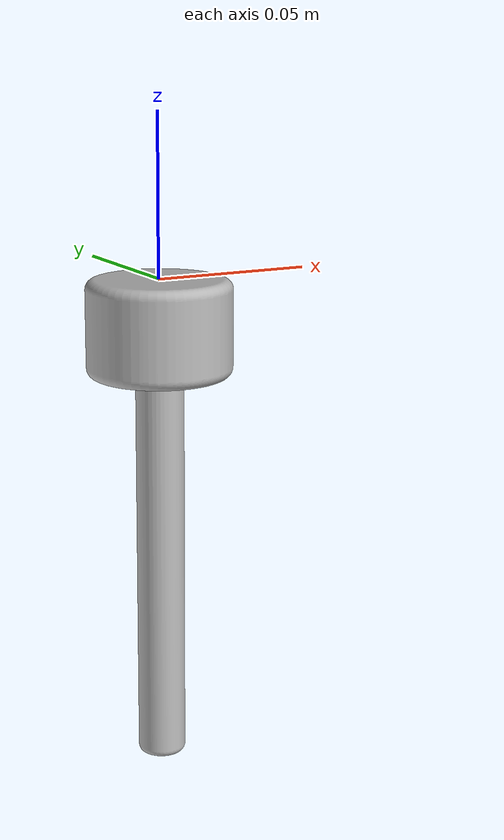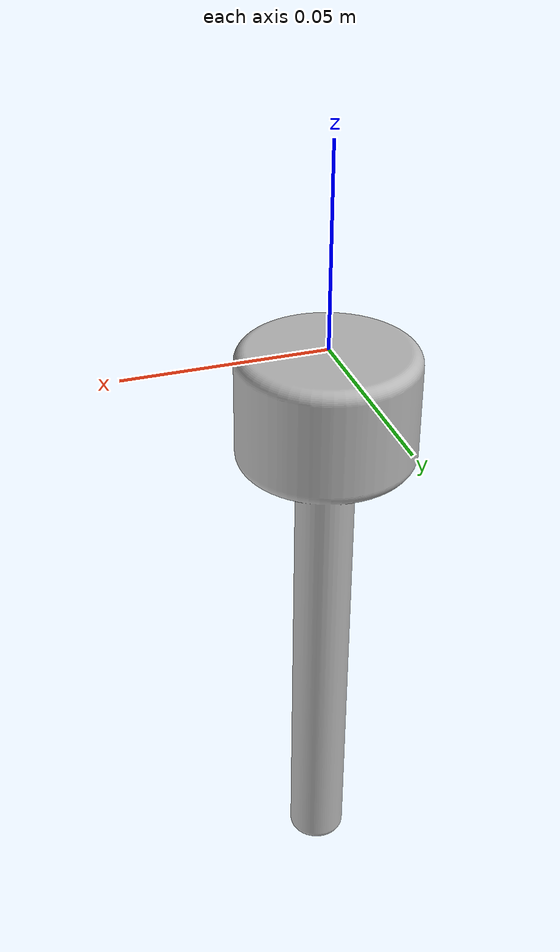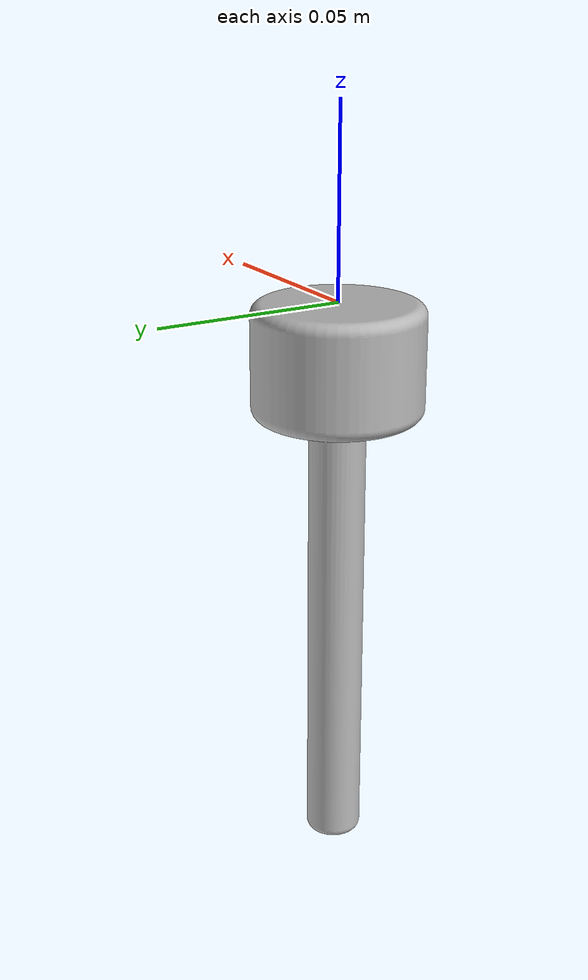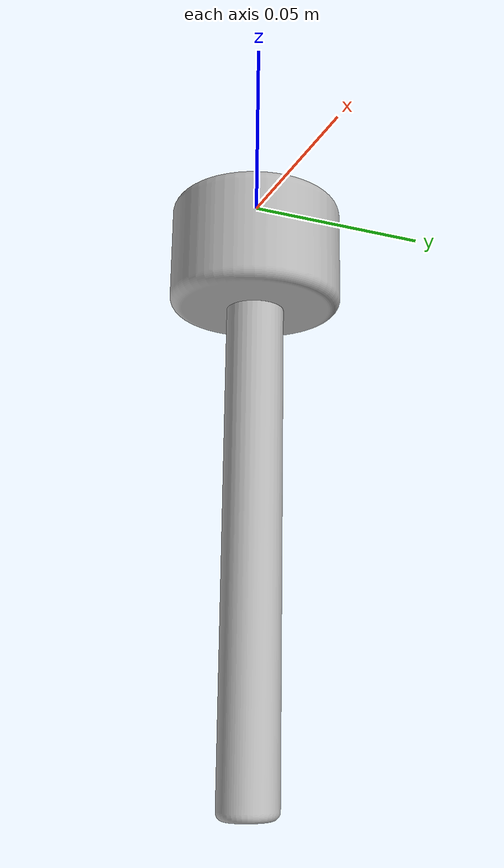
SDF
<?xml version="1.0" ?>
<sdf version="1.5">
  <model name="pH_probe">
    <static>false</static>
    <link name="link">

      <inertial>
        <mass>0.1</mass>
        <inertia>
          <ixx>1.1248e-04</ixx>
          <ixy>0.0</ixy>
          <ixz>0.0</ixz>
          <iyy>0.3149e-04</iyy>
          <iyz>0.0</iyz>
          <izz>0.3149e-04</izz>
        </inertia>
      </inertial>

      <visual name="visual">
        <geometry>
          <mesh>
            <uri>model://pH_probe/meshes/pH_probe.dae</uri>
          </mesh>
        </geometry>
      </visual>
      <!-- collision -->
      <collision name="collision">
        <geometry>
          <mesh>
            <uri>model://pH_probe/collision/pH_probe.stl</uri>
          </mesh>
        </geometry>
        <surface>
          <contact>
            <ode>
              <soft_cfm>0.2</soft_cfm>
              <soft_erp>0.2</soft_erp>
              <kp>1e5</kp>
              <kd>1.0</kd>
            </ode>
          </contact>
          <contact>
            <ode>
              <max_vel>0.1</max_vel>
              <min_depth>0.001</min_depth>
            </ode>
          </contact>
          <friction>
            <ode>
              <mu>1e10</mu>
              <mu2>1e10</mu2>
            </ode>
          </friction>
        </surface>
      </collision>

    </link>

  </model>

</sdf>
